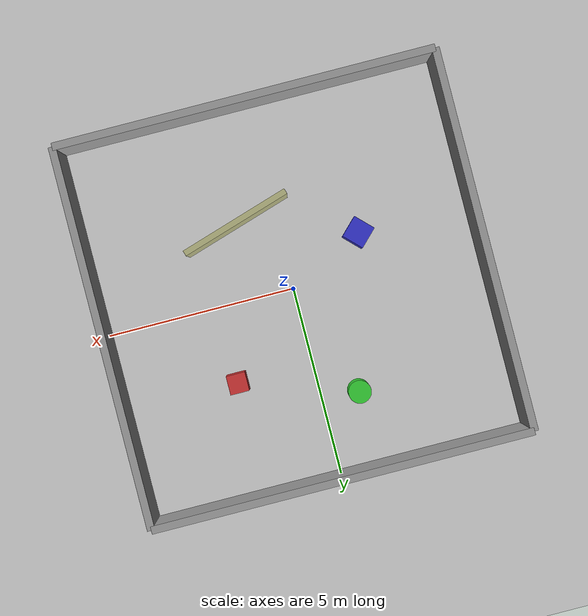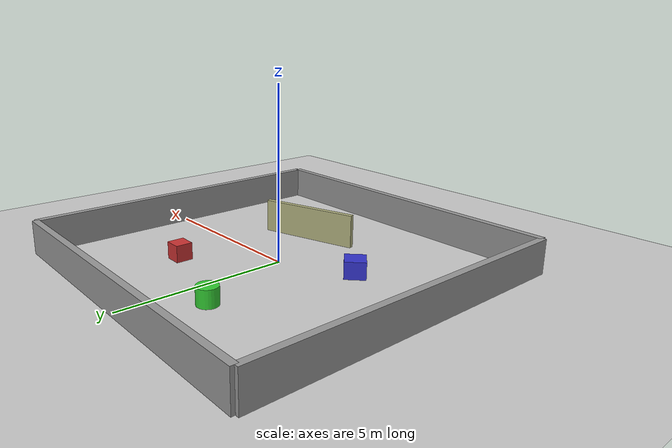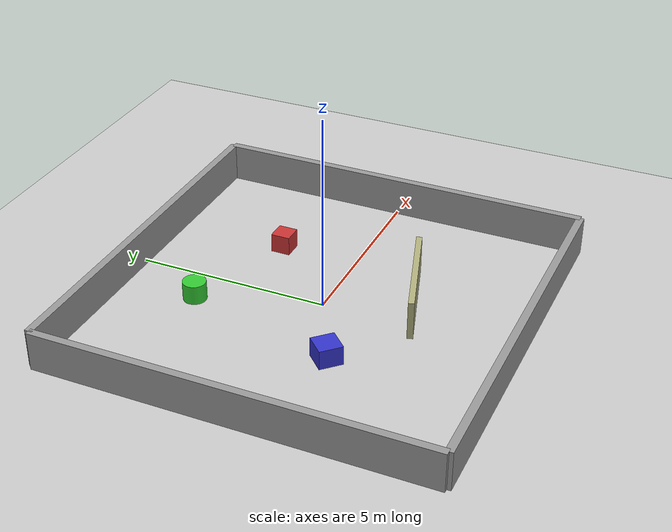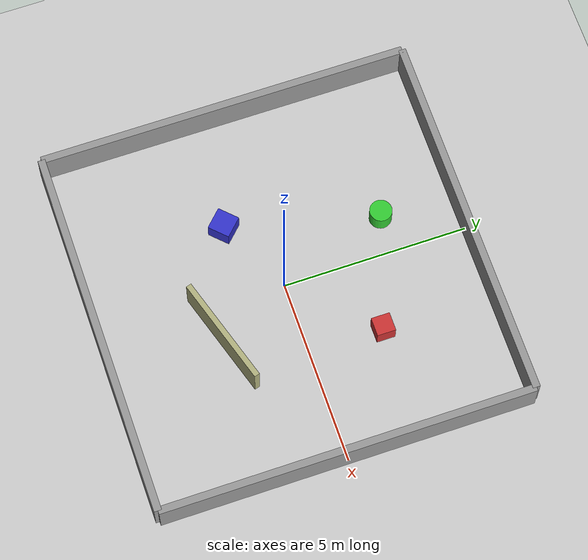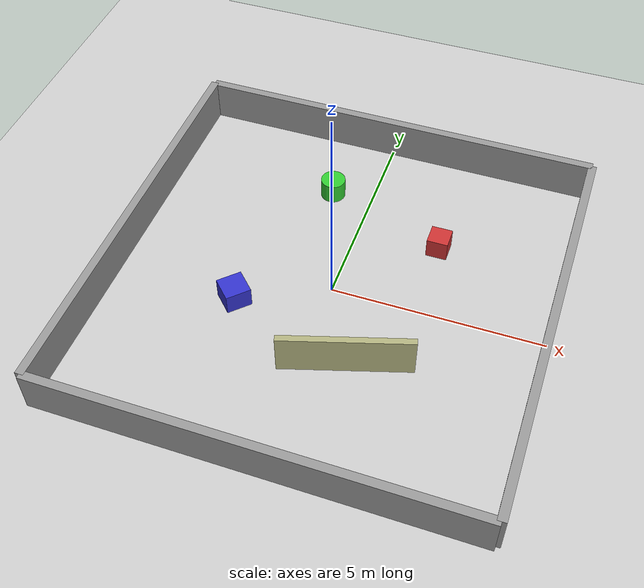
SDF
<?xml version="1.0" ?>
<sdf version="1.8">
  <world name="obstacles">

    <!-- Required Ignition Fortress system plugins -->
    <plugin filename="ignition-gazebo-physics-system"
            name="ignition::gazebo::systems::Physics"/>
    <plugin filename="ignition-gazebo-user-commands-system"
            name="ignition::gazebo::systems::UserCommands"/>
    <plugin filename="ignition-gazebo-scene-broadcaster-system"
            name="ignition::gazebo::systems::SceneBroadcaster"/>
    <!-- Sensor system for gpu_lidar -->
    <plugin filename="ignition-gazebo-sensors-system"
            name="ignition::gazebo::systems::Sensors">
      <render_engine>ogre2</render_engine>
    </plugin>

    <physics name="1ms" type="ode">
      <max_step_size>0.01</max_step_size>
      <real_time_factor>1.0</real_time_factor>
    </physics>

    <light type="directional" name="sun">
      <cast_shadows>true</cast_shadows>
      <pose>0 0 10 0 0 0</pose>
      <diffuse>0.8 0.8 0.8 1</diffuse>
      <specular>0.2 0.2 0.2 1</specular>
      <direction>-0.5 0.1 -0.9</direction>
    </light>

    <model name="ground_plane">
      <static>true</static>
      <link name="link">
        <collision name="collision">
          <geometry>
            <plane>
              <normal>0 0 1</normal>
              <size>100 100</size>
            </plane>
          </geometry>
        </collision>
        <visual name="visual">
          <geometry>
            <plane>
              <normal>0 0 1</normal>
              <size>100 100</size>
            </plane>
          </geometry>
          <material>
            <ambient>0.8 0.8 0.8 1</ambient>
            <diffuse>0.8 0.8 0.8 1</diffuse>
            <specular>0.8 0.8 0.8 1</specular>
          </material>
        </visual>
      </link>
    </model>

    <!-- Walls forming a simple room -->
    <model name="wall_north">
      <static>true</static>
      <pose>0 5 0.5 0 0 0</pose>
      <link name="link">
        <collision name="collision">
          <geometry><box><size>10 0.2 1.0</size></box></geometry>
        </collision>
        <visual name="visual">
          <geometry><box><size>10 0.2 1.0</size></box></geometry>
          <material>
            <ambient>0.6 0.6 0.6 1</ambient>
            <diffuse>0.6 0.6 0.6 1</diffuse>
          </material>
        </visual>
      </link>
    </model>

    <model name="wall_south">
      <static>true</static>
      <pose>0 -5 0.5 0 0 0</pose>
      <link name="link">
        <collision name="collision">
          <geometry><box><size>10 0.2 1.0</size></box></geometry>
        </collision>
        <visual name="visual">
          <geometry><box><size>10 0.2 1.0</size></box></geometry>
          <material>
            <ambient>0.6 0.6 0.6 1</ambient>
            <diffuse>0.6 0.6 0.6 1</diffuse>
          </material>
        </visual>
      </link>
    </model>

    <model name="wall_east">
      <static>true</static>
      <pose>5 0 0.5 0 0 1.5708</pose>
      <link name="link">
        <collision name="collision">
          <geometry><box><size>10 0.2 1.0</size></box></geometry>
        </collision>
        <visual name="visual">
          <geometry><box><size>10 0.2 1.0</size></box></geometry>
          <material>
            <ambient>0.6 0.6 0.6 1</ambient>
            <diffuse>0.6 0.6 0.6 1</diffuse>
          </material>
        </visual>
      </link>
    </model>

    <model name="wall_west">
      <static>true</static>
      <pose>-5 0 0.5 0 0 1.5708</pose>
      <link name="link">
        <collision name="collision">
          <geometry><box><size>10 0.2 1.0</size></box></geometry>
        </collision>
        <visual name="visual">
          <geometry><box><size>10 0.2 1.0</size></box></geometry>
          <material>
            <ambient>0.6 0.6 0.6 1</ambient>
            <diffuse>0.6 0.6 0.6 1</diffuse>
          </material>
        </visual>
      </link>
    </model>

    <!-- Obstacles inside the room -->
    <model name="box_1">
      <static>true</static>
      <pose>2 2 0.25 0 0 0</pose>
      <link name="link">
        <collision name="collision">
          <geometry><box><size>0.5 0.5 0.5</size></box></geometry>
        </collision>
        <visual name="visual">
          <geometry><box><size>0.5 0.5 0.5</size></box></geometry>
          <material>
            <ambient>0.8 0.2 0.2 1</ambient>
            <diffuse>0.8 0.2 0.2 1</diffuse>
          </material>
        </visual>
      </link>
    </model>

    <model name="box_2">
      <static>true</static>
      <pose>-2 -1 0.25 0 0 0.7854</pose>
      <link name="link">
        <collision name="collision">
          <geometry><box><size>0.6 0.6 0.5</size></box></geometry>
        </collision>
        <visual name="visual">
          <geometry><box><size>0.6 0.6 0.5</size></box></geometry>
          <material>
            <ambient>0.2 0.2 0.8 1</ambient>
            <diffuse>0.2 0.2 0.8 1</diffuse>
          </material>
        </visual>
      </link>
    </model>

    <model name="cylinder_1">
      <static>true</static>
      <pose>-1 3 0.25 0 0 0</pose>
      <link name="link">
        <collision name="collision">
          <geometry><cylinder><radius>0.3</radius><length>0.5</length></cylinder></geometry>
        </collision>
        <visual name="visual">
          <geometry><cylinder><radius>0.3</radius><length>0.5</length></cylinder></geometry>
          <material>
            <ambient>0.2 0.8 0.2 1</ambient>
            <diffuse>0.2 0.8 0.2 1</diffuse>
          </material>
        </visual>
      </link>
    </model>

    <model name="wall_internal">
      <static>true</static>
      <pose>1 -2 0.5 0 0 0.3</pose>
      <link name="link">
        <collision name="collision">
          <geometry><box><size>3 0.15 1.0</size></box></geometry>
        </collision>
        <visual name="visual">
          <geometry><box><size>3 0.15 1.0</size></box></geometry>
          <material>
            <ambient>0.7 0.7 0.5 1</ambient>
            <diffuse>0.7 0.7 0.5 1</diffuse>
          </material>
        </visual>
      </link>
    </model>

  </world>
</sdf>
